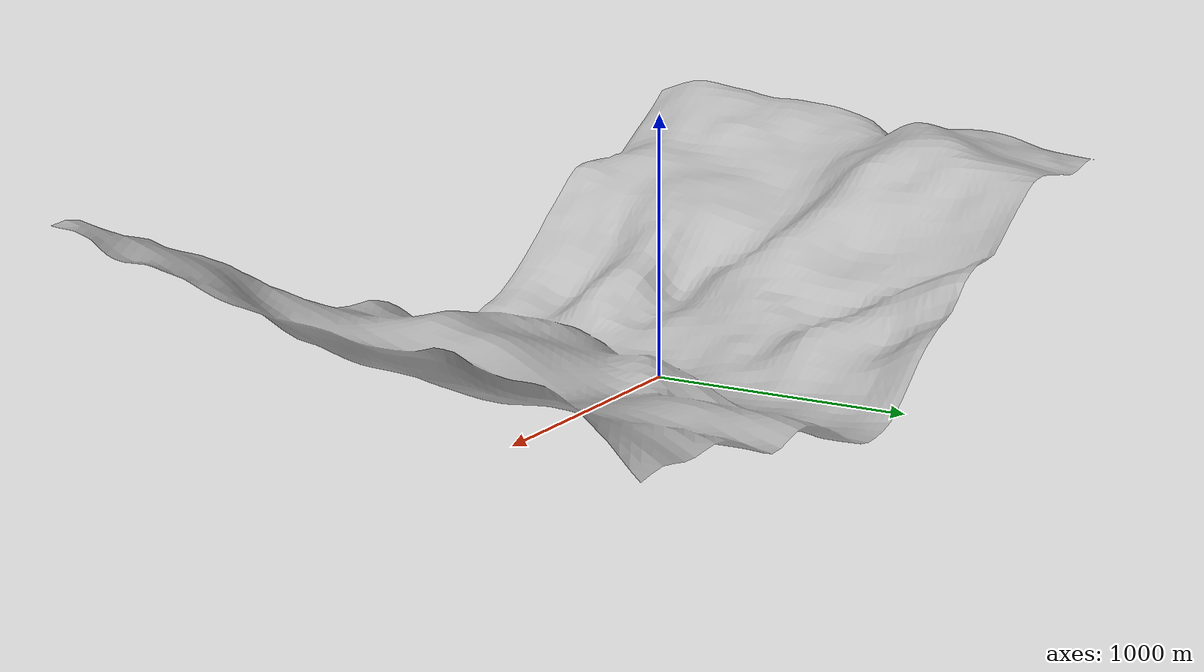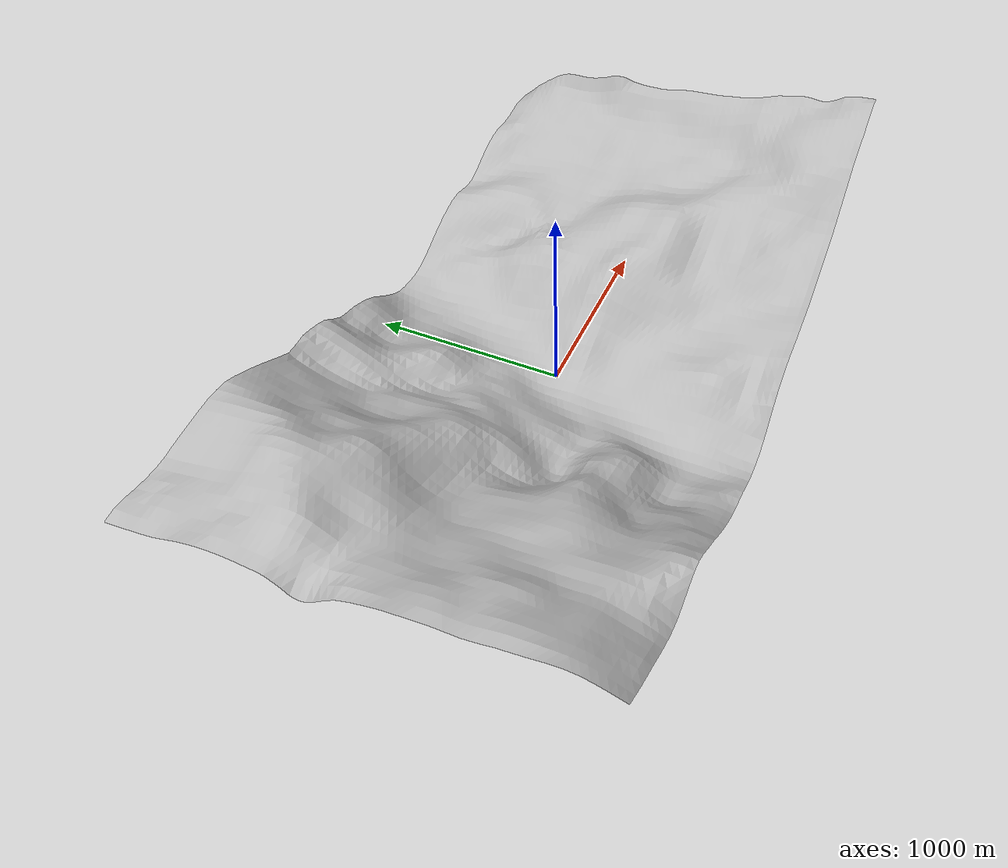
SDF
<?xml version="1.0" ?>
<sdf version="1.4">
  <model name="v5">
	<static>true</static>
	<link name="link">
	  <pose>0 0 41.3 0 0 0</pose>
	    <collision name="my_collision">
		<geometry>
                   <mesh><uri>model://v5/untitled.dae</uri></mesh>
		 </geometry>
	    </collision>

	    <visual name="my_visual">
		<geometry>
                   <mesh><uri>model://v5/untitled.dae</uri></mesh>
		 </geometry>
	    </visual>
	</link>
    </model>
</sdf>
